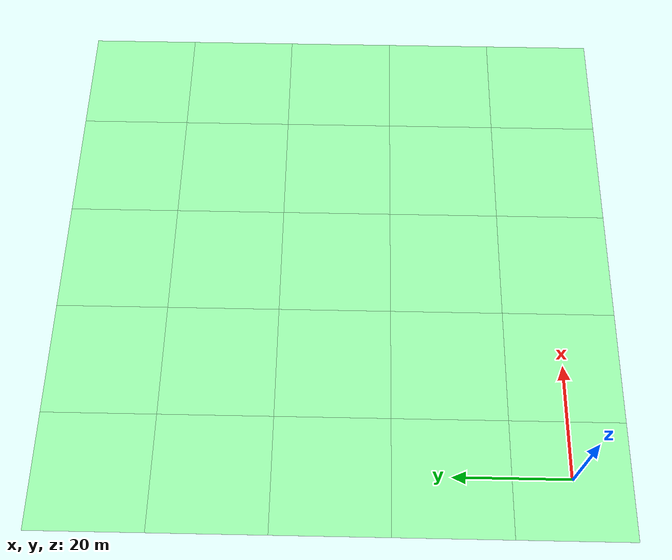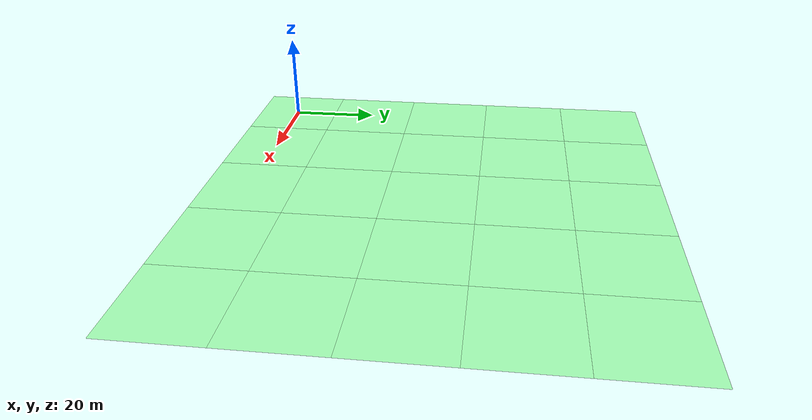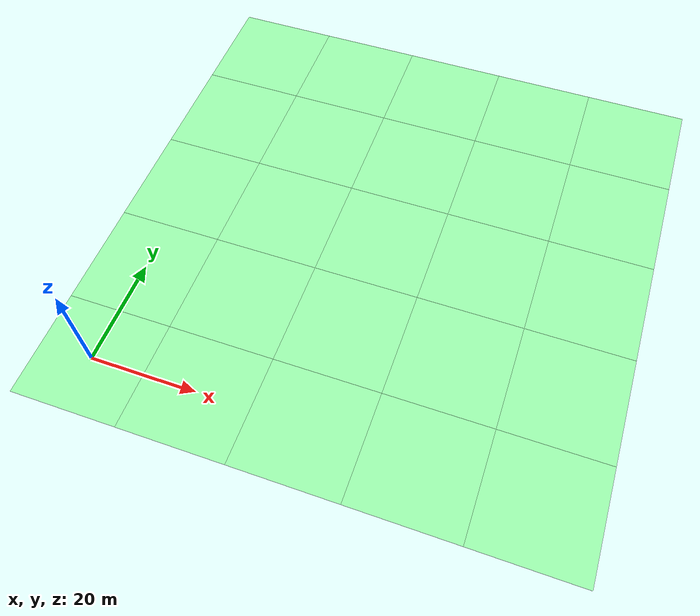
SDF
<sdf version="1.9">
 <world name="runway">
  <physics name="1ms" type="ignore">
   <max_step_size>0.001</max_step_size>
   <real_time_factor>1.0</real_time_factor>
  </physics>
  <plugin filename="gz-sim-physics-system" name="gz::sim::systems::Physics"/>
  <plugin filename="gz-sim-sensors-system" name="gz::sim::systems::Sensors">
   <render_engine>ogre2</render_engine>
  </plugin>
  <plugin filename="gz-sim-user-commands-system" name="gz::sim::systems::UserCommands"/>
  <plugin filename="gz-sim-scene-broadcaster-system" name="gz::sim::systems::SceneBroadcaster"/>
  <plugin filename="gz-sim-air-pressure-system" name="gz::sim::systems::AirPressure"/>
  <plugin filename="gz-sim-air-speed-system" name="gz::sim::systems::AirSpeed"/>
  <plugin filename="gz-sim-altimeter-system" name="gz::sim::systems::Altimeter"/>
  <plugin filename="gz-sim-imu-system" name="gz::sim::systems::Imu"/>
  <plugin filename="gz-sim-magnetometer-system" name="gz::sim::systems::Magnetometer">
   <use_units_gauss>false</use_units_gauss>
   <use_earth_frame_ned>false</use_earth_frame_ned>
  </plugin>
  <plugin filename="gz-sim-navsat-system" name="gz::sim::systems::NavSat"/>
  <scene><ambient>1.0 1.0 1.0</ambient><background>0.8 0.8 0.8</background></scene>
  <spherical_coordinates>
   <latitude_deg>-35.363262</latitude_deg>
   <longitude_deg>149.165237</longitude_deg>
   <elevation>584</elevation>
   <heading_deg>0</heading_deg>
   <surface_model>EARTH_WGS84</surface_model>
  </spherical_coordinates>
  <light type="directional" name="sun">
   <pose>0 0 10 0 0 0</pose>
   <diffuse>0.8 0.8 0.8 1</diffuse>
   <specular>0.8 0.8 0.8 1</specular>
   <attenuation>
    <range>1000</range>
    <constant>0.9</constant>
    <linear>0.01</linear>
    <quadratic>0.001</quadratic>
   </attenuation>
   <direction>-0.5 0.1 -0.9</direction>
  </light>
  <model name="axes">
   <static>1</static>
   <link name="link">
    <visual name="r">
     <cast_shadows>0</cast_shadows>
     <pose>5 0 0.1 0 0 0</pose>
     <geometry><box><size>10 0.01 0.01</size></box></geometry>
     <material>
      <ambient>1 0 0 0.8</ambient>
      <diffuse>1 0 0 0.8</diffuse>
      <emissive>1 0 0 0.8</emissive>
      <specular>0.5 0.5 0.5 0.8</specular>
     </material>
    </visual>
    <visual name="g">
     <cast_shadows>0</cast_shadows>
     <pose>0 5 0.1 0 0 0</pose>
     <geometry><box><size>0.01 10 0.01</size></box></geometry>
     <material>
      <ambient>0 1 0 0.8</ambient>
      <diffuse>0 1 0 0.8</diffuse>
      <emissive>0 1 0 0.8</emissive>
      <specular>0.5 0.5 0.5 0.8</specular>
     </material>
    </visual>
    <visual name="b">
     <cast_shadows>0</cast_shadows>
     <pose>0 0 5.1 0 0 0</pose>
     <geometry><box><size>0.01 0.01 10</size></box></geometry>
     <material>
      <ambient>0 0 1 0.8</ambient>
      <diffuse>0 0 1 0.8</diffuse>
      <emissive>0 0 1 0.8</emissive>
      <specular>0.5 0.5 0.5 0.8</specular>
     </material>
    </visual>
    <sensor name="navsat_sensor" type="navsat"><always_on>1</always_on><update_rate>1</update_rate></sensor>
   </link>
  </model>
  <include>
   <uri>model://level_tile</uri>
   <pose degrees="true">0 0 0.01 0 0 90</pose>
   <name>level_tile_1</name>
  </include>
  <include>
   <uri>model://level_tile</uri>
   <pose degrees="true">20 0 0.01 0 0 90</pose>
   <name>level_tile_2</name>
  </include>
  <include>
   <uri>model://level_tile</uri>
   <pose degrees="true">40 0 0.01 0 0 90</pose>
   <name>level_tile_3</name>
  </include>
  <include>
   <uri>model://level_tile</uri>
   <pose degrees="true">60 0 0.01 0 0 90</pose>
   <name>level_tile_4</name>
  </include>
  <include>
   <uri>model://level_tile</uri>
   <pose degrees="true">80 0 0.01 0 0 90</pose>
   <name>level_tile_5</name>
  </include>
  <include>
   <uri>model://level_tile</uri>
   <pose degrees="true">0 20 0.01 0 0 90</pose>
   <name>level_tile_6</name>
  </include>
  <include>
   <uri>model://level_tile</uri>
   <pose degrees="true">20 20 0.01 0 0 90</pose>
   <name>level_tile_7</name>
  </include>
  <include>
   <uri>model://level_tile</uri>
   <pose degrees="true">40 20 0.01 0 0 90</pose>
   <name>level_tile_8</name>
  </include>
  <include>
   <uri>model://level_tile</uri>
   <pose degrees="true">60 20 0.01 0 0 90</pose>
   <name>level_tile_9</name>
  </include>
  <include>
   <uri>model://level_tile</uri>
   <pose degrees="true">80 20 0.01 0 0 90</pose>
   <name>level_tile_10</name>
  </include>
  <include>
   <uri>model://level_tile</uri>
   <pose degrees="true">0 40 0.01 0 0 90</pose>
   <name>level_tile_11</name>
  </include>
  <include>
   <uri>model://level_tile</uri>
   <pose degrees="true">20 40 0.01 0 0 90</pose>
   <name>level_tile_12</name>
  </include>
  <include>
   <uri>model://level_tile</uri>
   <pose degrees="true">40 40 0.01 0 0 90</pose>
   <name>level_tile_13</name>
  </include>
  <include>
   <uri>model://level_tile</uri>
   <pose degrees="true">60 40 0.01 0 0 90</pose>
   <name>level_tile_14</name>
  </include>
  <include>
   <uri>model://level_tile</uri>
   <pose degrees="true">80 40 0.01 0 0 90</pose>
   <name>level_tile_15</name>
  </include>
  <include>
   <uri>model://level_tile</uri>
   <pose degrees="true">0 60 0.01 0 0 90</pose>
   <name>level_tile_16</name>
  </include>
  <include>
   <uri>model://level_tile</uri>
   <pose degrees="true">20 60 0.01 0 0 90</pose>
   <name>level_tile_17</name>
  </include>
  <include>
   <uri>model://level_tile</uri>
   <pose degrees="true">40 60 0.01 0 0 90</pose>
   <name>level_tile_18</name>
  </include>
  <include>
   <uri>model://level_tile</uri>
   <pose degrees="true">60 60 0.01 0 0 90</pose>
   <name>level_tile_19</name>
  </include>
  <include>
   <uri>model://level_tile</uri>
   <pose degrees="true">80 60 0.01 0 0 90</pose>
   <name>level_tile_20</name>
  </include>
  <include>
   <uri>model://level_tile</uri>
   <pose degrees="true">0 80 0.01 0 0 90</pose>
   <name>level_tile_21</name>
  </include>
  <include>
   <uri>model://level_tile</uri>
   <pose degrees="true">20 80 0.01 0 0 90</pose>
   <name>level_tile_22</name>
  </include>
  <include>
   <uri>model://level_tile</uri>
   <pose degrees="true">40 80 0.01 0 0 90</pose>
   <name>level_tile_23</name>
  </include>
  <include>
   <uri>model://level_tile</uri>
   <pose degrees="true">60 80 0.01 0 0 90</pose>
   <name>level_tile_24</name>
  </include>
  <include>
   <uri>model://level_tile</uri>
   <pose degrees="true">80 80 0.01 0 0 90</pose>
   <name>level_tile_25</name>
  </include>
  <plugin name="gz::sim" filename="dummy">
   <performer name="perf_iris_with_ardupilot_1">
    <ref>iris_with_ardupilot_1</ref>
    <geometry><box><size>2 2 2</size></box></geometry>
   </performer>
   <performer name="perf_iris_with_ardupilot_2">
    <ref>iris_with_ardupilot_2</ref>
    <geometry><box><size>2 2 2</size></box></geometry>
   </performer>
   <performer name="perf_iris_with_ardupilot_3">
    <ref>iris_with_ardupilot_3</ref>
    <geometry><box><size>2 2 2</size></box></geometry>
   </performer>
   <performer name="perf_iris_with_ardupilot_4">
    <ref>iris_with_ardupilot_4</ref>
    <geometry><box><size>2 2 2</size></box></geometry>
   </performer>
   <level name="level1"><geometry><box><size>20 20 1000</size></box></geometry><ref>level_tile_1</ref></level>
   <level name="level2">
    <pose>20 0 0 0 0 0</pose>
    <geometry><box><size>20 20 1000</size></box></geometry>
    <ref>level_tile_2</ref>
   </level>
   <level name="level3">
    <pose>40 0 0 0 0 0</pose>
    <geometry><box><size>20 20 1000</size></box></geometry>
    <ref>level_tile_3</ref>
   </level>
   <level name="level4">
    <pose>60 0 0 0 0 0</pose>
    <geometry><box><size>20 20 1000</size></box></geometry>
    <ref>level_tile_4</ref>
   </level>
   <level name="level5">
    <pose>80 0 0 0 0 0</pose>
    <geometry><box><size>20 20 1000</size></box></geometry>
    <ref>level_tile_5</ref>
   </level>
   <level name="level6">
    <pose>0 20 0 0 0 0</pose>
    <geometry><box><size>20 20 1000</size></box></geometry>
    <ref>level_tile_6</ref>
   </level>
   <level name="level7">
    <pose>20 20 0 0 0 0</pose>
    <geometry><box><size>20 20 1000</size></box></geometry>
    <ref>level_tile_7</ref>
   </level>
   <level name="level8">
    <pose>40 20 0 0 0 0</pose>
    <geometry><box><size>20 20 1000</size></box></geometry>
    <ref>level_tile_8</ref>
   </level>
   <level name="level9">
    <pose>60 20 0 0 0 0</pose>
    <geometry><box><size>20 20 1000</size></box></geometry>
    <ref>level_tile_9</ref>
   </level>
   <level name="level10">
    <pose>80 20 0 0 0 0</pose>
    <geometry><box><size>20 20 1000</size></box></geometry>
    <ref>level_tile_10</ref>
   </level>
   <level name="level11">
    <pose>0 40 0 0 0 0</pose>
    <geometry><box><size>20 20 1000</size></box></geometry>
    <ref>level_tile_11</ref>
   </level>
   <level name="level12">
    <pose>20 40 0 0 0 0</pose>
    <geometry><box><size>20 20 1000</size></box></geometry>
    <ref>level_tile_12</ref>
   </level>
   <level name="level13">
    <pose>40 40 0 0 0 0</pose>
    <geometry><box><size>20 20 1000</size></box></geometry>
    <ref>level_tile_13</ref>
   </level>
   <level name="level14">
    <pose>60 40 0 0 0 0</pose>
    <geometry><box><size>20 20 1000</size></box></geometry>
    <ref>level_tile_14</ref>
   </level>
   <level name="level15">
    <pose>80 40 0 0 0 0</pose>
    <geometry><box><size>20 20 1000</size></box></geometry>
    <ref>level_tile_15</ref>
   </level>
   <level name="level16">
    <pose>0 60 0 0 0 0</pose>
    <geometry><box><size>20 20 1000</size></box></geometry>
    <ref>level_tile_16</ref>
   </level>
   <level name="level17">
    <pose>20 60 0 0 0 0</pose>
    <geometry><box><size>20 20 1000</size></box></geometry>
    <ref>level_tile_17</ref>
   </level>
   <level name="level18">
    <pose>40 60 0 0 0 0</pose>
    <geometry><box><size>20 20 1000</size></box></geometry>
    <ref>level_tile_18</ref>
   </level>
   <level name="level19">
    <pose>60 60 0 0 0 0</pose>
    <geometry><box><size>20 20 1000</size></box></geometry>
    <ref>level_tile_19</ref>
   </level>
   <level name="level20">
    <pose>80 60 0 0 0 0</pose>
    <geometry><box><size>20 20 1000</size></box></geometry>
    <ref>level_tile_20</ref>
   </level>
   <level name="level21">
    <pose>0 80 0 0 0 0</pose>
    <geometry><box><size>20 20 1000</size></box></geometry>
    <ref>level_tile_21</ref>
   </level>
   <level name="level22">
    <pose>20 80 0 0 0 0</pose>
    <geometry><box><size>20 20 1000</size></box></geometry>
    <ref>level_tile_22</ref>
   </level>
   <level name="level23">
    <pose>40 80 0 0 0 0</pose>
    <geometry><box><size>20 20 1000</size></box></geometry>
    <ref>level_tile_23</ref>
   </level>
   <level name="level24">
    <pose>60 80 0 0 0 0</pose>
    <geometry><box><size>20 20 1000</size></box></geometry>
    <ref>level_tile_24</ref>
   </level>
   <level name="level25">
    <pose>80 80 0 0 0 0</pose>
    <geometry><box><size>20 20 1000</size></box></geometry>
    <ref>level_tile_25</ref>
   </level>
  </plugin>
 </world>
</sdf>

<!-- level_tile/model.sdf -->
<sdf version="1.9">
  <model name="level_tile">
    <pose>0 0 0 0 0 0</pose>
    <static>true</static>

    <link name="base_link">
      <visual name="visual">
        <pose>0 0 -0.05 0 0 0</pose>
        <geometry>
          <box><size>20 20 0.1</size></box>
        </geometry>
        <material>
          <ambient>0 1 0 0.3</ambient>
          <diffuse>0 1 0 0.3</diffuse>
          <specular>1 1 1 0.3</specular>
        </material>
      </visual>
    </link>

  </model>
</sdf>
